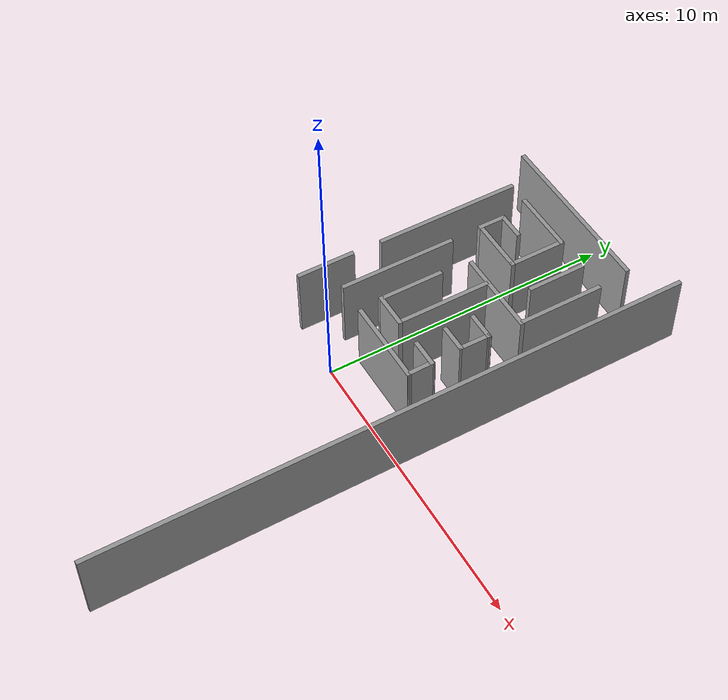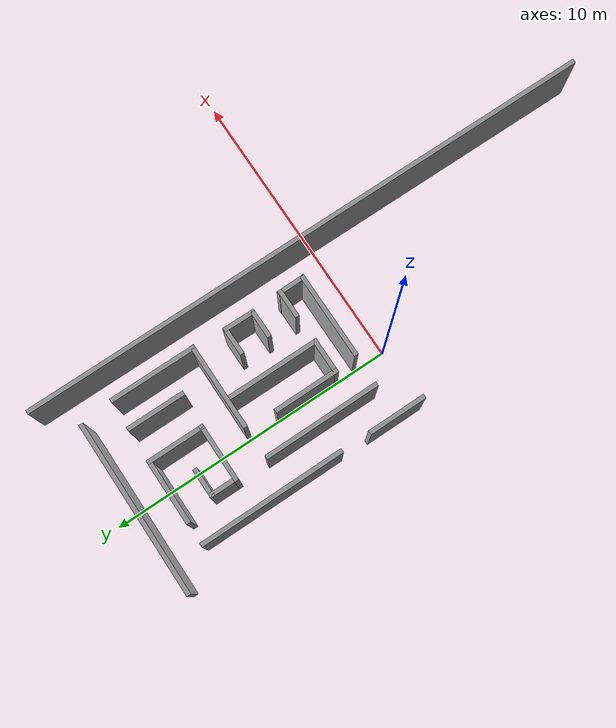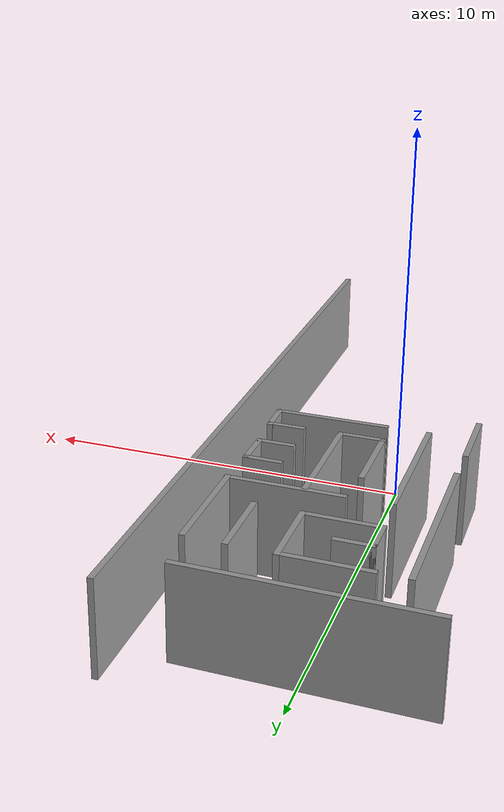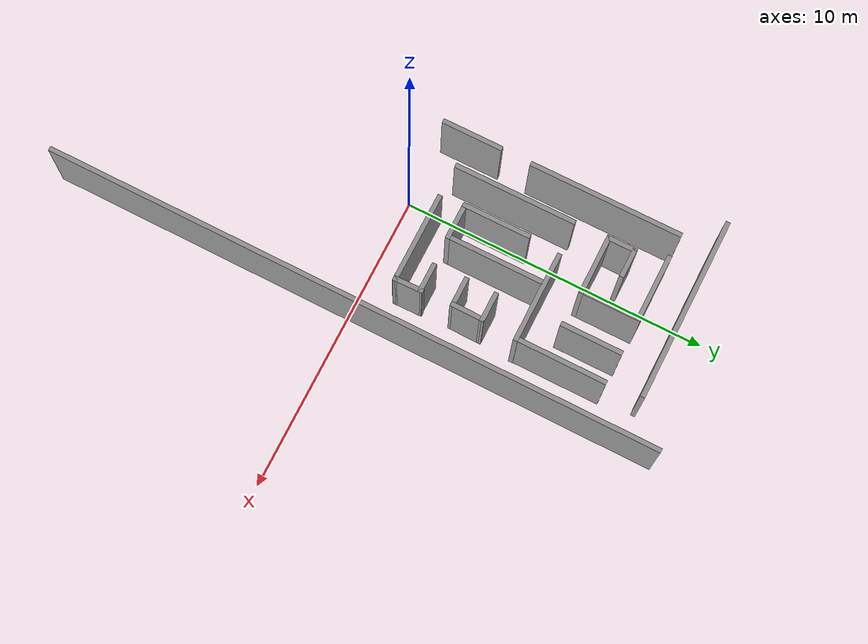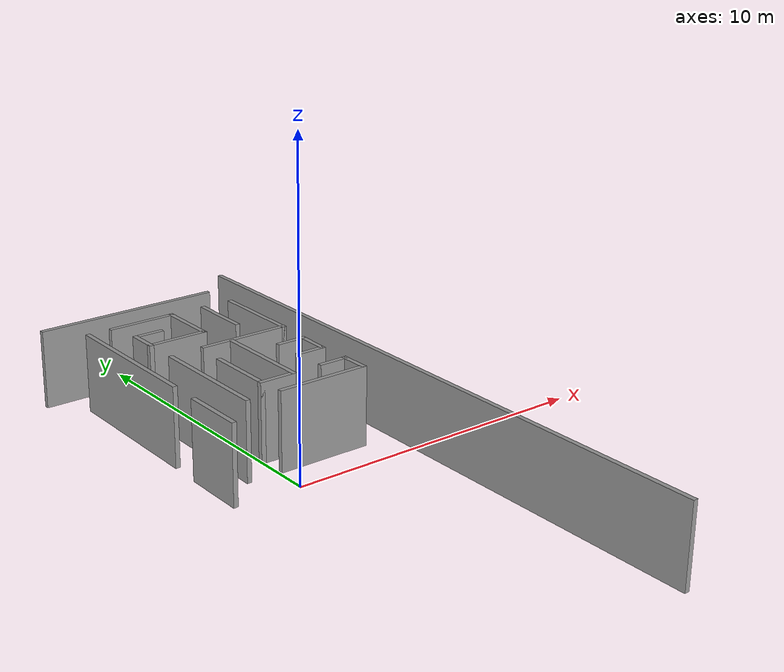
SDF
<sdf version="1.5">
 <model name="Maze2">
  <pose>-2.952 0.082564 0 0 -0 0</pose>
  <link name="Wall_104">
   <collision name="Wall_104_Collision">
    <geometry><box><size>5 0.15 2.5</size></box></geometry>
    <pose>0 0 1.25 0 -0 0</pose>
   </collision>
   <visual name="Wall_104_Visual">
    <pose>0 0 1.25 0 -0 0</pose>
    <geometry><box><size>5 0.15 2.5</size></box></geometry>
    <material>
     <script><uri>file://media/materials/scripts/gazebo.material</uri><name>Gazebo/Grey</name></script>
     <ambient>1 1 1 1</ambient>
    </material>
    <meta><layer>0</layer></meta>
   </visual>
   <pose>0.885547 5.45052 0 0 -0 1.5708</pose>
  </link>
  <link name="Wall_106">
   <collision name="Wall_106_Collision">
    <geometry><box><size>6 0.15 2.5</size></box></geometry>
    <pose>0 0 1.25 0 -0 0</pose>
   </collision>
   <visual name="Wall_106_Visual">
    <pose>0 0 1.25 0 -0 0</pose>
    <geometry><box><size>6 0.15 2.5</size></box></geometry>
    <material>
     <script><uri>file://media/materials/scripts/gazebo.material</uri><name>Gazebo/Grey</name></script>
     <ambient>1 1 1 1</ambient>
    </material>
    <meta><layer>0</layer></meta>
   </visual>
   <pose>2.87435 9.00269 0 0 -0 0</pose>
  </link>
  <link name="Wall_108">
   <collision name="Wall_108_Collision">
    <geometry><box><size>2.25 0.15 2.5</size></box></geometry>
    <pose>0 0 1.25 0 -0 0</pose>
   </collision>
   <visual name="Wall_108_Visual">
    <pose>0 0 1.25 0 -0 0</pose>
    <geometry><box><size>2.25 0.15 2.5</size></box></geometry>
    <material>
     <script><uri>file://media/materials/scripts/gazebo.material</uri><name>Gazebo/Grey</name></script>
     <ambient>1 1 1 1</ambient>
    </material>
    <meta><layer>0</layer></meta>
   </visual>
   <pose>2.74179 7.89809 0 0 -0 0</pose>
  </link>
  <link name="Wall_109">
   <collision name="Wall_109_Collision">
    <geometry><box><size>2 0.15 2.5</size></box></geometry>
    <pose>0 0 1.25 0 -0 0</pose>
   </collision>
   <visual name="Wall_109_Visual">
    <pose>0 0 1.25 0 -0 0</pose>
    <geometry><box><size>2 0.15 2.5</size></box></geometry>
    <material>
     <script><uri>file://media/materials/scripts/gazebo.material</uri><name>Gazebo/Grey</name></script>
     <ambient>1 1 1 1</ambient>
    </material>
    <meta><layer>0</layer></meta>
   </visual>
   <pose>3.79179 6.97309 0 0 -0 -1.5708</pose>
  </link>
  <link name="Wall_110">
   <collision name="Wall_110_Collision">
    <geometry><box><size>2 0.15 2.5</size></box></geometry>
    <pose>0 0 1.25 0 -0 0</pose>
   </collision>
   <visual name="Wall_110_Visual">
    <pose>0 0 1.25 0 -0 0</pose>
    <geometry><box><size>2 0.15 2.5</size></box></geometry>
    <material>
     <script><uri>file://media/materials/scripts/gazebo.material</uri><name>Gazebo/Grey</name></script>
     <ambient>1 1 1 1</ambient>
    </material>
    <meta><layer>0</layer></meta>
   </visual>
   <pose>2.86679 6.04809 0 0 -0 3.14159</pose>
  </link>
  <link name="Wall_111">
   <collision name="Wall_111_Collision">
    <geometry><box><size>1 0.15 2.5</size></box></geometry>
    <pose>0 0 1.25 0 -0 0</pose>
   </collision>
   <visual name="Wall_111_Visual">
    <pose>0 0 1.25 0 -0 0</pose>
    <geometry><box><size>1 0.15 2.5</size></box></geometry>
    <material>
     <script><uri>file://media/materials/scripts/gazebo.material</uri><name>Gazebo/Grey</name></script>
     <ambient>1 1 1 1</ambient>
    </material>
    <meta><layer>0</layer></meta>
   </visual>
   <pose>1.94179 6.47309 0 0 -0 1.5708</pose>
  </link>
  <link name="Wall_112">
   <collision name="Wall_112_Collision">
    <geometry><box><size>1 0.15 2.5</size></box></geometry>
    <pose>0 0 1.25 0 -0 0</pose>
   </collision>
   <visual name="Wall_112_Visual">
    <pose>0 0 1.25 0 -0 0</pose>
    <geometry><box><size>1 0.15 2.5</size></box></geometry>
    <material>
     <script><uri>file://media/materials/scripts/gazebo.material</uri><name>Gazebo/Grey</name></script>
     <ambient>1 1 1 1</ambient>
    </material>
    <meta><layer>0</layer></meta>
   </visual>
   <pose>2.36679 6.89809 0 0 -0 0</pose>
  </link>
  <link name="Wall_114">
   <collision name="Wall_114_Collision">
    <geometry><box><size>4 0.15 2.5</size></box></geometry>
    <pose>0 0 1.25 0 -0 0</pose>
   </collision>
   <visual name="Wall_114_Visual">
    <pose>0 0 1.25 0 -0 0</pose>
    <geometry><box><size>4 0.15 2.5</size></box></geometry>
    <material>
     <script><uri>file://media/materials/scripts/gazebo.material</uri><name>Gazebo/Grey</name></script>
     <ambient>1 1 1 1</ambient>
    </material>
    <meta><layer>0</layer></meta>
   </visual>
   <pose>1.96588 2.95915 0 0 -0 -1.5708</pose>
  </link>
  <link name="Wall_116">
   <collision name="Wall_116_Collision">
    <geometry><box><size>3 0.15 2.5</size></box></geometry>
    <pose>0 0 1.25 0 -0 0</pose>
   </collision>
   <visual name="Wall_116_Visual">
    <pose>0 0 1.25 0 -0 0</pose>
    <geometry><box><size>3 0.15 2.5</size></box></geometry>
    <material>
     <script><uri>file://media/materials/scripts/gazebo.material</uri><name>Gazebo/Grey</name></script>
     <ambient>1 1 1 1</ambient>
    </material>
    <meta><layer>0</layer></meta>
   </visual>
   <pose>4.55311 4.97074 0 0 -0 0</pose>
  </link>
  <link name="Wall_118">
   <collision name="Wall_118_Collision">
    <geometry><box><size>2 0.15 2.5</size></box></geometry>
    <pose>0 0 1.25 0 -0 0</pose>
   </collision>
   <visual name="Wall_118_Visual">
    <pose>0 0 1.25 0 -0 0</pose>
    <geometry><box><size>2 0.15 2.5</size></box></geometry>
    <material>
     <script><uri>file://media/materials/scripts/gazebo.material</uri><name>Gazebo/Grey</name></script>
     <ambient>1 1 1 1</ambient>
    </material>
    <meta><layer>0</layer></meta>
   </visual>
   <pose>4.96128 6.9316 0 0 -0 1.5708</pose>
  </link>
  <link name="Wall_120">
   <collision name="Wall_120_Collision">
    <geometry><box><size>3 0.15 2.5</size></box></geometry>
    <pose>0 0 1.25 0 -0 0</pose>
   </collision>
   <visual name="Wall_120_Visual">
    <pose>0 0 1.25 0 -0 0</pose>
    <geometry><box><size>3 0.15 2.5</size></box></geometry>
    <material>
     <script><uri>file://media/materials/scripts/gazebo.material</uri><name>Gazebo/Grey</name></script>
     <ambient>1 1 1 1</ambient>
    </material>
    <meta><layer>0</layer></meta>
   </visual>
   <pose>5.96654 6.39574 0 0 -0 1.5708</pose>
  </link>
  <link name="Wall_122">
   <collision name="Wall_122_Collision">
    <geometry><box><size>3.25 0.15 2.5</size></box></geometry>
    <pose>0 0 1.25 0 -0 0</pose>
   </collision>
   <visual name="Wall_122_Visual">
    <pose>0 0 1.25 0 -0 0</pose>
    <geometry><box><size>3.25 0.15 2.5</size></box></geometry>
    <material>
     <script><uri>file://media/materials/scripts/gazebo.material</uri><name>Gazebo/Grey</name></script>
     <ambient>1 1 1 1</ambient>
    </material>
    <meta><layer>0</layer></meta>
   </visual>
   <pose>4.07457 3.33741 0 0 -0 -1.5708</pose>
  </link>
  <link name="Wall_123">
   <collision name="Wall_123_Collision">
    <geometry><box><size>1.25 0.15 2.5</size></box></geometry>
    <pose>0 0 1.25 0 -0 0</pose>
   </collision>
   <visual name="Wall_123_Visual">
    <pose>0 0 1.25 0 -0 0</pose>
    <geometry><box><size>1.25 0.15 2.5</size></box></geometry>
    <material>
     <script><uri>file://media/materials/scripts/gazebo.material</uri><name>Gazebo/Grey</name></script>
     <ambient>1 1 1 1</ambient>
    </material>
    <meta><layer>0</layer></meta>
   </visual>
   <pose>3.52457 1.78741 0 0 -0 3.14159</pose>
  </link>
  <link name="Wall_124">
   <collision name="Wall_124_Collision">
    <geometry><box><size>2.25 0.15 2.5</size></box></geometry>
    <pose>0 0 1.25 0 -0 0</pose>
   </collision>
   <visual name="Wall_124_Visual">
    <pose>0 0 1.25 0 -0 0</pose>
    <geometry><box><size>2.25 0.15 2.5</size></box></geometry>
    <material>
     <script><uri>file://media/materials/scripts/gazebo.material</uri><name>Gazebo/Grey</name></script>
     <ambient>1 1 1 1</ambient>
    </material>
    <meta><layer>0</layer></meta>
   </visual>
   <pose>2.97457 2.83741 0 0 -0 1.5708</pose>
  </link>
  <link name="Wall_126">
   <collision name="Wall_126_Collision">
    <geometry><box><size>1 0.15 2.5</size></box></geometry>
    <pose>0 0 1.25 0 -0 0</pose>
   </collision>
   <visual name="Wall_126_Visual">
    <pose>0 0 1.25 0 -0 0</pose>
    <geometry><box><size>1 0.15 2.5</size></box></geometry>
    <material>
     <script><uri>file://media/materials/scripts/gazebo.material</uri><name>Gazebo/Grey</name></script>
     <ambient>1 1 1 1</ambient>
    </material>
    <meta><layer>0</layer></meta>
   </visual>
   <pose>5.47761 3.83472 0 0 -0 0</pose>
  </link>
  <link name="Wall_127">
   <collision name="Wall_127_Collision">
    <geometry><box><size>1.11415 0.15 2.5</size></box></geometry>
    <pose>0 0 1.25 0 -0 0</pose>
   </collision>
   <visual name="Wall_127_Visual">
    <pose>0 0 1.25 0 -0 0</pose>
    <geometry><box><size>1.11415 0.15 2.5</size></box></geometry>
    <material>
     <script><uri>file://media/materials/scripts/gazebo.material</uri><name>Gazebo/Grey</name></script>
     <ambient>1 1 1 1</ambient>
    </material>
    <meta><layer>0</layer></meta>
   </visual>
   <pose>5.89623 3.34508 0 0 -0 -1.58403</pose>
  </link>
  <link name="Wall_128">
   <collision name="Wall_128_Collision">
    <geometry><box><size>1 0.15 2.5</size></box></geometry>
    <pose>0 0 1.25 0 -0 0</pose>
   </collision>
   <visual name="Wall_128_Visual">
    <pose>0 0 1.25 0 -0 0</pose>
    <geometry><box><size>1 0.15 2.5</size></box></geometry>
    <material>
     <script><uri>file://media/materials/scripts/gazebo.material</uri><name>Gazebo/Grey</name></script>
     <ambient>1 1 1 1</ambient>
    </material>
    <meta><layer>0</layer></meta>
   </visual>
   <pose>5.46485 2.85545 0 0 -0 3.14159</pose>
  </link>
  <link name="Wall_130">
   <collision name="Wall_130_Collision">
    <geometry><box><size>3 0.15 2.5</size></box></geometry>
    <pose>0 0 1.25 0 -0 0</pose>
   </collision>
   <visual name="Wall_130_Visual">
    <pose>0 0 1.25 0 -0 0</pose>
    <geometry><box><size>3 0.15 2.5</size></box></geometry>
    <material>
     <script><uri>file://media/materials/scripts/gazebo.material</uri><name>Gazebo/Grey</name></script>
     <ambient>1 1 1 1</ambient>
    </material>
    <meta><layer>0</layer></meta>
   </visual>
   <pose>4.52953 0.989447 0 0 -0 0</pose>
  </link>
  <link name="Wall_131">
   <collision name="Wall_131_Collision">
    <geometry><box><size>0.969553 0.15 2.5</size></box></geometry>
    <pose>0 0 1.25 0 -0 0</pose>
   </collision>
   <visual name="Wall_131_Visual">
    <pose>0 0 1.25 0 -0 0</pose>
    <geometry><box><size>0.969553 0.15 2.5</size></box></geometry>
    <material>
     <script><uri>file://media/materials/scripts/gazebo.material</uri><name>Gazebo/Grey</name></script>
     <ambient>1 1 1 1</ambient>
    </material>
    <meta><layer>0</layer></meta>
   </visual>
   <pose>5.94688 1.41445 0 0 -0 1.58946</pose>
  </link>
  <link name="Wall_132">
   <collision name="Wall_132_Collision">
    <geometry><box><size>1 0.15 2.5</size></box></geometry>
    <pose>0 0 1.25 0 -0 0</pose>
   </collision>
   <visual name="Wall_132_Visual">
    <pose>0 0 1.25 0 -0 0</pose>
    <geometry><box><size>1 0.15 2.5</size></box></geometry>
    <material>
     <script><uri>file://media/materials/scripts/gazebo.material</uri><name>Gazebo/Grey</name></script>
     <ambient>1 1 1 1</ambient>
    </material>
    <meta><layer>0</layer></meta>
   </visual>
   <pose>5.51424 1.80886 0 0 -0 3.14159</pose>
  </link>
  <link name="Wall_4">
   <collision name="Wall_4_Collision">
    <geometry><box><size>20.3154 0.15 2.5</size></box></geometry>
    <pose>0 0 1.25 0 -0 0</pose>
   </collision>
   <visual name="Wall_4_Visual">
    <pose>0 0 1.25 0 -0 0</pose>
    <geometry><box><size>20.3154 0.15 2.5</size></box></geometry>
    <material>
     <script><uri>file://media/materials/scripts/gazebo.material</uri><name>Gazebo/Grey</name></script>
     <ambient>1 1 1 1</ambient>
    </material>
    <meta><layer>0</layer></meta>
   </visual>
   <pose>7.06829 0.000144 0 0 -0 1.5708</pose>
  </link>
  <link name="Wall_92">
   <collision name="Wall_92_Collision">
    <geometry><box><size>2 0.15 2.5</size></box></geometry>
    <pose>0 0 1.25 0 -0 0</pose>
   </collision>
   <visual name="Wall_92_Visual">
    <pose>0 0 1.25 0 -0 0</pose>
    <geometry><box><size>2 0.15 2.5</size></box></geometry>
    <material>
     <script><uri>file://media/materials/scripts/gazebo.material</uri><name>Gazebo/Grey</name></script>
     <ambient>1 1 1 1</ambient>
    </material>
    <meta><layer>0</layer></meta>
   </visual>
   <pose>0.863474 0.9831 0 0 -0 -1.5708</pose>
  </link>
  <static>1</static>
 </model>
 <model name="Maze2">
  <pose>-2.952 0.082564 0 0 -0 0</pose>
  <scale>1 1 1</scale>
  <link name="Wall_0">
   <pose>-1.89538 -2.33625 0 0 -0 1.5708</pose>
   <velocity>0 0 0 0 -0 0</velocity>
   <acceleration>0 0 0 0 -0 0</acceleration>
   <wrench>0 0 0 0 -0 0</wrench>
  </link>
  <link name="Wall_1">
   <pose>-5.9401 -0.908952 0 0 -0 3.13346</pose>
   <velocity>0 0 0 0 -0 0</velocity>
   <acceleration>0 0 0 0 -0 0</acceleration>
   <wrench>0 0 0 0 -0 0</wrench>
  </link>
  <link name="Wall_10">
   <pose>-8.94408 -3.00785 0 0 0 -1.57273</pose>
   <velocity>0 0 0 0 -0 0</velocity>
   <acceleration>0 0 0 0 -0 0</acceleration>
   <wrench>0 0 0 0 -0 0</wrench>
  </link>
  <link name="Wall_100">
   <pose>0.49954 -8.95639 0 0 -0 3.14159</pose>
   <velocity>0 0 0 0 -0 0</velocity>
   <acceleration>0 0 0 0 -0 0</acceleration>
   <wrench>0 0 0 0 -0 0</wrench>
  </link>
  <link name="Wall_102">
   <pose>-2.89846 -8.52522 0 0 0 -1.5708</pose>
   <velocity>0 0 0 0 -0 0</velocity>
   <acceleration>0 0 0 0 -0 0</acceleration>
   <wrench>0 0 0 0 -0 0</wrench>
  </link>
  <link name="Wall_104">
   <pose>-2.06645 5.53308 0 0 -0 1.5708</pose>
   <velocity>0 0 0 0 -0 0</velocity>
   <acceleration>0 0 0 0 -0 0</acceleration>
   <wrench>0 0 0 0 -0 0</wrench>
  </link>
  <link name="Wall_106">
   <pose>-0.07765 9.08525 0 0 -0 0</pose>
   <velocity>0 0 0 0 -0 0</velocity>
   <acceleration>0 0 0 0 -0 0</acceleration>
   <wrench>0 0 0 0 -0 0</wrench>
  </link>
  <link name="Wall_108">
   <pose>-0.21021 7.98065 0 0 -0 0</pose>
   <velocity>0 0 0 0 -0 0</velocity>
   <acceleration>0 0 0 0 -0 0</acceleration>
   <wrench>0 0 0 0 -0 0</wrench>
  </link>
  <link name="Wall_109">
   <pose>0.83979 7.05565 0 0 0 -1.5708</pose>
   <velocity>0 0 0 0 -0 0</velocity>
   <acceleration>0 0 0 0 -0 0</acceleration>
   <wrench>0 0 0 0 -0 0</wrench>
  </link>
  <link name="Wall_110">
   <pose>-0.08521 6.13065 0 0 -0 3.14159</pose>
   <velocity>0 0 0 0 -0 0</velocity>
   <acceleration>0 0 0 0 -0 0</acceleration>
   <wrench>0 0 0 0 -0 0</wrench>
  </link>
  <link name="Wall_111">
   <pose>-1.01021 6.55565 0 0 -0 1.5708</pose>
   <velocity>0 0 0 0 -0 0</velocity>
   <acceleration>0 0 0 0 -0 0</acceleration>
   <wrench>0 0 0 0 -0 0</wrench>
  </link>
  <link name="Wall_112">
   <pose>-0.58521 6.98065 0 0 -0 0</pose>
   <velocity>0 0 0 0 -0 0</velocity>
   <acceleration>0 0 0 0 -0 0</acceleration>
   <wrench>0 0 0 0 -0 0</wrench>
  </link>
  <link name="Wall_114">
   <pose>-0.98612 3.04171 0 0 0 -1.5708</pose>
   <velocity>0 0 0 0 -0 0</velocity>
   <acceleration>0 0 0 0 -0 0</acceleration>
   <wrench>0 0 0 0 -0 0</wrench>
  </link>
  <link name="Wall_116">
   <pose>1.60111 5.0533 0 0 -0 0</pose>
   <velocity>0 0 0 0 -0 0</velocity>
   <acceleration>0 0 0 0 -0 0</acceleration>
   <wrench>0 0 0 0 -0 0</wrench>
  </link>
  <link name="Wall_118">
   <pose>2.00928 7.01416 0 0 -0 1.5708</pose>
   <velocity>0 0 0 0 -0 0</velocity>
   <acceleration>0 0 0 0 -0 0</acceleration>
   <wrench>0 0 0 0 -0 0</wrench>
  </link>
  <link name="Wall_12">
   <pose>-5.41712 -2.86403 0 0 -0 0.006165</pose>
   <velocity>0 0 0 0 -0 0</velocity>
   <acceleration>0 0 0 0 -0 0</acceleration>
   <wrench>0 0 0 0 -0 0</wrench>
  </link>
  <link name="Wall_120">
   <pose>3.01454 6.4783 0 0 -0 1.5708</pose>
   <velocity>0 0 0 0 -0 0</velocity>
   <acceleration>0 0 0 0 -0 0</acceleration>
   <wrench>0 0 0 0 -0 0</wrench>
  </link>
  <link name="Wall_122">
   <pose>1.12257 3.41997 0 0 0 -1.5708</pose>
   <velocity>0 0 0 0 -0 0</velocity>
   <acceleration>0 0 0 0 -0 0</acceleration>
   <wrench>0 0 0 0 -0 0</wrench>
  </link>
  <link name="Wall_123">
   <pose>0.57257 1.86997 0 0 -0 3.14159</pose>
   <velocity>0 0 0 0 -0 0</velocity>
   <acceleration>0 0 0 0 -0 0</acceleration>
   <wrench>0 0 0 0 -0 0</wrench>
  </link>
  <link name="Wall_124">
   <pose>0.02257 2.91997 0 0 -0 1.5708</pose>
   <velocity>0 0 0 0 -0 0</velocity>
   <acceleration>0 0 0 0 -0 0</acceleration>
   <wrench>0 0 0 0 -0 0</wrench>
  </link>
  <link name="Wall_126">
   <pose>2.52561 3.91728 0 0 -0 0</pose>
   <velocity>0 0 0 0 -0 0</velocity>
   <acceleration>0 0 0 0 -0 0</acceleration>
   <wrench>0 0 0 0 -0 0</wrench>
  </link>
  <link name="Wall_127">
   <pose>2.94423 3.42764 0 0 0 -1.58403</pose>
   <velocity>0 0 0 0 -0 0</velocity>
   <acceleration>0 0 0 0 -0 0</acceleration>
   <wrench>0 0 0 0 -0 0</wrench>
  </link>
  <link name="Wall_128">
   <pose>2.51285 2.93801 0 0 -0 3.14159</pose>
   <velocity>0 0 0 0 -0 0</velocity>
   <acceleration>0 0 0 0 -0 0</acceleration>
   <wrench>0 0 0 0 -0 0</wrench>
  </link>
  <link name="Wall_13">
   <pose>-2.96681 -3.89874 0 0 0 -1.5708</pose>
   <velocity>0 0 0 0 -0 0</velocity>
   <acceleration>0 0 0 0 -0 0</acceleration>
   <wrench>0 0 0 0 -0 0</wrench>
  </link>
  <link name="Wall_130">
   <pose>1.57753 1.07201 0 0 -0 0</pose>
   <velocity>0 0 0 0 -0 0</velocity>
   <acceleration>0 0 0 0 -0 0</acceleration>
   <wrench>0 0 0 0 -0 0</wrench>
  </link>
  <link name="Wall_131">
   <pose>2.99488 1.49701 0 0 -0 1.58946</pose>
   <velocity>0 0 0 0 -0 0</velocity>
   <acceleration>0 0 0 0 -0 0</acceleration>
   <wrench>0 0 0 0 -0 0</wrench>
  </link>
  <link name="Wall_132">
   <pose>2.56224 1.89142 0 0 -0 3.14159</pose>
   <velocity>0 0 0 0 -0 0</velocity>
   <acceleration>0 0 0 0 -0 0</acceleration>
   <wrench>0 0 0 0 -0 0</wrench>
  </link>
  <link name="Wall_134">
   <pose>2.9859 -2.07524 0 0 0 -1.5708</pose>
   <velocity>0 0 0 0 -0 0</velocity>
   <acceleration>0 0 0 0 -0 0</acceleration>
   <wrench>0 0 0 0 -0 0</wrench>
  </link>
  <link name="Wall_136">
   <pose>2.50173 -8.93057 0 0 -0 0</pose>
   <velocity>0 0 0 0 -0 0</velocity>
   <acceleration>0 0 0 0 -0 0</acceleration>
   <wrench>0 0 0 0 -0 0</wrench>
  </link>
  <link name="Wall_137">
   <pose>2.92673 -8.50557 0 0 -0 1.5708</pose>
   <velocity>0 0 0 0 -0 0</velocity>
   <acceleration>0 0 0 0 -0 0</acceleration>
   <wrench>0 0 0 0 -0 0</wrench>
  </link>
  <link name="Wall_138">
   <pose>2.92673 -7.53057 0 0 -0 1.5708</pose>
   <velocity>0 0 0 0 -0 0</velocity>
   <acceleration>0 0 0 0 -0 0</acceleration>
   <wrench>0 0 0 0 -0 0</wrench>
  </link>
  <link name="Wall_14">
   <pose>-2.06712 -4.96403 0 0 0 -0.017597</pose>
   <velocity>0 0 0 0 -0 0</velocity>
   <acceleration>0 0 0 0 -0 0</acceleration>
   <wrench>0 0 0 0 -0 0</wrench>
  </link>
  <link name="Wall_140">
   <pose>-0.03938 -6.05815 0 0 -0 1.5708</pose>
   <velocity>0 0 0 0 -0 0</velocity>
   <acceleration>0 0 0 0 -0 0</acceleration>
   <wrench>0 0 0 0 -0 0</wrench>
  </link>
  <link name="Wall_141">
   <pose>1.01061 -5.13315 0 0 -0 0</pose>
   <velocity>0 0 0 0 -0 0</velocity>
   <acceleration>0 0 0 0 -0 0</acceleration>
   <wrench>0 0 0 0 -0 0</wrench>
  </link>
  <link name="Wall_142">
   <pose>2.06062 -5.55815 0 0 0 -1.5708</pose>
   <velocity>0 0 0 0 -0 0</velocity>
   <acceleration>0 0 0 0 -0 0</acceleration>
   <wrench>0 0 0 0 -0 0</wrench>
  </link>
  <link name="Wall_143">
   <pose>1.51062 -5.98315 0 0 -0 3.14159</pose>
   <velocity>0 0 0 0 -0 0</velocity>
   <acceleration>0 0 0 0 -0 0</acceleration>
   <wrench>0 0 0 0 -0 0</wrench>
  </link>
  <link name="Wall_145">
   <pose>0.48058 -3.89165 0 0 -0 0</pose>
   <velocity>0 0 0 0 -0 0</velocity>
   <acceleration>0 0 0 0 -0 0</acceleration>
   <wrench>0 0 0 0 -0 0</wrench>
  </link>
  <link name="Wall_146">
   <pose>1.89029 -3.45909 0 0 -0 1.60553</pose>
   <velocity>0 0 0 0 -0 0</velocity>
   <acceleration>0 0 0 0 -0 0</acceleration>
   <wrench>0 0 0 0 -0 0</wrench>
  </link>
  <link name="Wall_147">
   <pose>0.46529 -3.01892 0 0 -0 3.14159</pose>
   <velocity>0 0 0 0 -0 0</velocity>
   <acceleration>0 0 0 0 -0 0</acceleration>
   <wrench>0 0 0 0 -0 0</wrench>
  </link>
  <link name="Wall_149">
   <pose>-0.95971 -2.46892 0 0 -0 1.5708</pose>
   <velocity>0 0 0 0 -0 0</velocity>
   <acceleration>0 0 0 0 -0 0</acceleration>
   <wrench>0 0 0 0 -0 0</wrench>
  </link>
  <link name="Wall_15">
   <pose>-1.14973 -4.99227 0 0 0 -0.261799</pose>
   <velocity>0 0 0 0 -0 0</velocity>
   <acceleration>0 0 0 0 -0 0</acceleration>
   <wrench>0 0 0 0 -0 0</wrench>
  </link>
  <link name="Wall_150">
   <pose>-0.40971 -1.91892 0 0 -0 0</pose>
   <velocity>0 0 0 0 -0 0</velocity>
   <acceleration>0 0 0 0 -0 0</acceleration>
   <wrench>0 0 0 0 -0 0</wrench>
  </link>
  <link name="Wall_151">
   <pose>0.14029 -1.49392 0 0 -0 1.5708</pose>
   <velocity>0 0 0 0 -0 0</velocity>
   <acceleration>0 0 0 0 -0 0</acceleration>
   <wrench>0 0 0 0 -0 0</wrench>
  </link>
  <link name="Wall_152">
   <pose>-0.40971 -1.06892 0 0 -0 3.14159</pose>
   <velocity>0 0 0 0 -0 0</velocity>
   <acceleration>0 0 0 0 -0 0</acceleration>
   <wrench>0 0 0 0 -0 0</wrench>
  </link>
  <link name="Wall_154">
   <pose>1.08243 -1.49072 0 0 0 -1.5708</pose>
   <velocity>0 0 0 0 -0 0</velocity>
   <acceleration>0 0 0 0 -0 0</acceleration>
   <wrench>0 0 0 0 -0 0</wrench>
  </link>
  <link name="Wall_155">
   <pose>1.50743 -1.91572 0 0 -0 0</pose>
   <velocity>0 0 0 0 -0 0</velocity>
   <acceleration>0 0 0 0 -0 0</acceleration>
   <wrench>0 0 0 0 -0 0</wrench>
  </link>
  <link name="Wall_156">
   <pose>1.93243 -1.49072 0 0 -0 1.5708</pose>
   <velocity>0 0 0 0 -0 0</velocity>
   <acceleration>0 0 0 0 -0 0</acceleration>
   <wrench>0 0 0 0 -0 0</wrench>
  </link>
  <link name="Wall_16">
   <pose>-1.10143 -5.43021 0 0 0 -1.5708</pose>
   <velocity>0 0 0 0 -0 0</velocity>
   <acceleration>0 0 0 0 -0 0</acceleration>
   <wrench>0 0 0 0 -0 0</wrench>
  </link>
  <link name="Wall_17">
   <pose>-3.52643 -5.85521 0 0 -0 3.14159</pose>
   <velocity>0 0 0 0 -0 0</velocity>
   <acceleration>0 0 0 0 -0 0</acceleration>
   <wrench>0 0 0 0 -0 0</wrench>
  </link>
  <link name="Wall_19">
   <pose>-5.95143 -7.90521 0 0 0 -1.5708</pose>
   <velocity>0 0 0 0 -0 0</velocity>
   <acceleration>0 0 0 0 -0 0</acceleration>
   <wrench>0 0 0 0 -0 0</wrench>
  </link>
  <link name="Wall_2">
   <pose>-10.0024 -5.45563 0 0 0 -1.57467</pose>
   <velocity>0 0 0 0 -0 0</velocity>
   <acceleration>0 0 0 0 -0 0</acceleration>
   <wrench>0 0 0 0 -0 0</wrench>
  </link>
  <link name="Wall_21">
   <pose>-8.9588 -4.90546 0 0 -0 0</pose>
   <velocity>0 0 0 0 -0 0</velocity>
   <acceleration>0 0 0 0 -0 0</acceleration>
   <wrench>0 0 0 0 -0 0</wrench>
  </link>
  <link name="Wall_22">
   <pose>-8.0338 -4.48046 0 0 -0 1.5708</pose>
   <velocity>0 0 0 0 -0 0</velocity>
   <acceleration>0 0 0 0 -0 0</acceleration>
   <wrench>0 0 0 0 -0 0</wrench>
  </link>
  <link name="Wall_23">
   <pose>-7.4838 -4.05546 0 0 -0 0</pose>
   <velocity>0 0 0 0 -0 0</velocity>
   <acceleration>0 0 0 0 -0 0</acceleration>
   <wrench>0 0 0 0 -0 0</wrench>
  </link>
  <link name="Wall_24">
   <pose>-6.9338 -4.98046 0 0 0 -1.5708</pose>
   <velocity>0 0 0 0 -0 0</velocity>
   <acceleration>0 0 0 0 -0 0</acceleration>
   <wrench>0 0 0 0 -0 0</wrench>
  </link>
  <link name="Wall_25">
   <pose>-7.9838 -5.90546 0 0 -0 3.14159</pose>
   <velocity>0 0 0 0 -0 0</velocity>
   <acceleration>0 0 0 0 -0 0</acceleration>
   <wrench>0 0 0 0 -0 0</wrench>
  </link>
  <link name="Wall_26">
   <pose>-9.0338 -7.33046 0 0 0 -1.5708</pose>
   <velocity>0 0 0 0 -0 0</velocity>
   <acceleration>0 0 0 0 -0 0</acceleration>
   <wrench>0 0 0 0 -0 0</wrench>
  </link>
  <link name="Wall_27">
   <pose>-7.9838 -8.75546 0 0 -0 0</pose>
   <velocity>0 0 0 0 -0 0</velocity>
   <acceleration>0 0 0 0 -0 0</acceleration>
   <wrench>0 0 0 0 -0 0</wrench>
  </link>
  <link name="Wall_28">
   <pose>-6.9338 -7.95546 0 0 -0 1.5708</pose>
   <velocity>0 0 0 0 -0 0</velocity>
   <acceleration>0 0 0 0 -0 0</acceleration>
   <wrench>0 0 0 0 -0 0</wrench>
  </link>
  <link name="Wall_29">
   <pose>-7.6088 -7.15546 0 0 -0 3.14159</pose>
   <velocity>0 0 0 0 -0 0</velocity>
   <acceleration>0 0 0 0 -0 0</acceleration>
   <wrench>0 0 0 0 -0 0</wrench>
  </link>
  <link name="Wall_3">
   <pose>-2.97525 -10 0 0 -0 0</pose>
   <velocity>0 0 0 0 -0 0</velocity>
   <acceleration>0 0 0 0 -0 0</acceleration>
   <wrench>0 0 0 0 -0 0</wrench>
  </link>
  <link name="Wall_31">
   <pose>-5.96825 -3.91857 0 0 0 -1.5708</pose>
   <velocity>0 0 0 0 -0 0</velocity>
   <acceleration>0 0 0 0 -0 0</acceleration>
   <wrench>0 0 0 0 -0 0</wrench>
  </link>
  <link name="Wall_33">
   <pose>-4.97943 -4.90475 0 0 0 -0.015467</pose>
   <velocity>0 0 0 0 -0 0</velocity>
   <acceleration>0 0 0 0 -0 0</acceleration>
   <wrench>0 0 0 0 -0 0</wrench>
  </link>
  <link name="Wall_34">
   <pose>-3.96002 -4.47975 0 0 -0 1.5708</pose>
   <velocity>0 0 0 0 -0 0</velocity>
   <acceleration>0 0 0 0 -0 0</acceleration>
   <wrench>0 0 0 0 -0 0</wrench>
  </link>
  <link name="Wall_35">
   <pose>-4.47943 -4.00887 0 0 -0 3.07909</pose>
   <velocity>0 0 0 0 -0 0</velocity>
   <acceleration>0 0 0 0 -0 0</acceleration>
   <wrench>0 0 0 0 -0 0</wrench>
  </link>
  <link name="Wall_37">
   <pose>-4.954 -8.49004 0 0 0 -1.5708</pose>
   <velocity>0 0 0 0 -0 0</velocity>
   <acceleration>0 0 0 0 -0 0</acceleration>
   <wrench>0 0 0 0 -0 0</wrench>
  </link>
  <link name="Wall_38">
   <pose>-4.47623 -9.91504 0 0 0 -0.073499</pose>
   <velocity>0 0 0 0 -0 0</velocity>
   <acceleration>0 0 0 0 -0 0</acceleration>
   <wrench>0 0 0 0 -0 0</wrench>
  </link>
  <link name="Wall_39">
   <pose>-3.99846 -9.02522 0 0 -0 1.5708</pose>
   <velocity>0 0 0 0 -0 0</velocity>
   <acceleration>0 0 0 0 -0 0</acceleration>
   <wrench>0 0 0 0 -0 0</wrench>
  </link>
  <link name="Wall_4">
   <pose>4.11629 0.082708 0 0 -0 1.5708</pose>
   <velocity>0 0 0 0 -0 0</velocity>
   <acceleration>0 0 0 0 -0 0</acceleration>
   <wrench>0 0 0 0 -0 0</wrench>
  </link>
  <link name="Wall_40">
   <pose>-3.44846 -8.10022 0 0 -0 0</pose>
   <velocity>0 0 0 0 -0 0</velocity>
   <acceleration>0 0 0 0 -0 0</acceleration>
   <wrench>0 0 0 0 -0 0</wrench>
  </link>
  <link name="Wall_41">
   <pose>-2.89846 -7.67522 0 0 -0 1.5708</pose>
   <velocity>0 0 0 0 -0 0</velocity>
   <acceleration>0 0 0 0 -0 0</acceleration>
   <wrench>0 0 0 0 -0 0</wrench>
  </link>
  <link name="Wall_43">
   <pose>-3.93849 -6.39757 0 0 0 -1.5708</pose>
   <velocity>0 0 0 0 -0 0</velocity>
   <acceleration>0 0 0 0 -0 0</acceleration>
   <wrench>0 0 0 0 -0 0</wrench>
  </link>
  <link name="Wall_45">
   <pose>-2.02327 -7.40557 0 0 0 -1.5708</pose>
   <velocity>0 0 0 0 -0 0</velocity>
   <acceleration>0 0 0 0 -0 0</acceleration>
   <wrench>0 0 0 0 -0 0</wrench>
  </link>
  <link name="Wall_46">
   <pose>-2.02327 -7.78057 0 0 -0 1.5708</pose>
   <velocity>0 0 0 0 -0 0</velocity>
   <acceleration>0 0 0 0 -0 0</acceleration>
   <wrench>0 0 0 0 -0 0</wrench>
  </link>
  <link name="Wall_47">
   <pose>-2.02327 -6.73057 0 0 -0 0</pose>
   <velocity>0 0 0 0 -0 0</velocity>
   <acceleration>0 0 0 0 -0 0</acceleration>
   <wrench>0 0 0 0 -0 0</wrench>
  </link>
  <link name="Wall_48">
   <pose>-2.02327 -6.90557 0 0 0 -1.5708</pose>
   <velocity>0 0 0 0 -0 0</velocity>
   <acceleration>0 0 0 0 -0 0</acceleration>
   <wrench>0 0 0 0 -0 0</wrench>
  </link>
  <link name="Wall_49">
   <pose>0.02672 -7.08057 0 0 -0 0</pose>
   <velocity>0 0 0 0 -0 0</velocity>
   <acceleration>0 0 0 0 -0 0</acceleration>
   <wrench>0 0 0 0 -0 0</wrench>
  </link>
  <link name="Wall_5">
   <pose>-2.97525 10.1655 0 0 -0 3.14159</pose>
   <velocity>0 0 0 0 -0 0</velocity>
   <acceleration>0 0 0 0 -0 0</acceleration>
   <wrench>0 0 0 0 -0 0</wrench>
  </link>
  <link name="Wall_50">
   <pose>2.07672 -8.00557 0 0 0 -1.5708</pose>
   <velocity>0 0 0 0 -0 0</velocity>
   <acceleration>0 0 0 0 -0 0</acceleration>
   <wrench>0 0 0 0 -0 0</wrench>
  </link>
  <link name="Wall_52">
   <pose>-8.9009 4.62756 0 0 -0 1.5748</pose>
   <velocity>0 0 0 0 -0 0</velocity>
   <acceleration>0 0 0 0 -0 0</acceleration>
   <wrench>0 0 0 0 -0 0</wrench>
  </link>
  <link name="Wall_53">
   <pose>-8.45195 9.02275 0 0 -0 0.007167</pose>
   <velocity>0 0 0 0 -0 0</velocity>
   <acceleration>0 0 0 0 -0 0</acceleration>
   <wrench>0 0 0 0 -0 0</wrench>
  </link>
  <link name="Wall_54">
   <pose>-8.04033 7.46904 0 0 0 -1.56655</pose>
   <velocity>0 0 0 0 -0 0</velocity>
   <acceleration>0 0 0 0 -0 0</acceleration>
   <wrench>0 0 0 0 -0 0</wrench>
  </link>
  <link name="Wall_55">
   <pose>-6.99694 5.91243 0 0 -0 0</pose>
   <velocity>0 0 0 0 -0 0</velocity>
   <acceleration>0 0 0 0 -0 0</acceleration>
   <wrench>0 0 0 0 -0 0</wrench>
  </link>
  <link name="Wall_56">
   <pose>-5.93379 4.42157 0 0 0 -1.57085</pose>
   <velocity>0 0 0 0 -0 0</velocity>
   <acceleration>0 0 0 0 -0 0</acceleration>
   <wrench>0 0 0 0 -0 0</wrench>
  </link>
  <link name="Wall_57">
   <pose>-6.99709 2.94393 0 0 -0 3.129</pose>
   <velocity>0 0 0 0 -0 0</velocity>
   <acceleration>0 0 0 0 -0 0</acceleration>
   <wrench>0 0 0 0 -0 0</wrench>
  </link>
  <link name="Wall_58">
   <pose>-8.03352 3.9701 0 0 -0 1.57046</pose>
   <velocity>0 0 0 0 -0 0</velocity>
   <acceleration>0 0 0 0 -0 0</acceleration>
   <wrench>0 0 0 0 -0 0</wrench>
  </link>
  <link name="Wall_59">
   <pose>-7.49318 4.98304 0 0 -0 0</pose>
   <velocity>0 0 0 0 -0 0</velocity>
   <acceleration>0 0 0 0 -0 0</acceleration>
   <wrench>0 0 0 0 -0 0</wrench>
  </link>
  <link name="Wall_6">
   <pose>-10.0052 5.12466 0 0 0 -1.56782</pose>
   <velocity>0 0 0 0 -0 0</velocity>
   <acceleration>0 0 0 0 -0 0</acceleration>
   <wrench>0 0 0 0 -0 0</wrench>
  </link>
  <link name="Wall_61">
   <pose>-6.94318 4.55804 0 0 0 -1.5708</pose>
   <velocity>0 0 0 0 -0 0</velocity>
   <acceleration>0 0 0 0 -0 0</acceleration>
   <wrench>0 0 0 0 -0 0</wrench>
  </link>
  <link name="Wall_63">
   <pose>-8.05111 1.04035 0 0 -0 1.55695</pose>
   <velocity>0 0 0 0 -0 0</velocity>
   <acceleration>0 0 0 0 -0 0</acceleration>
   <wrench>0 0 0 0 -0 0</wrench>
  </link>
  <link name="Wall_64">
   <pose>-8.03954 1.43283 0 0 0 -1.5708</pose>
   <velocity>0 0 0 0 -0 0</velocity>
   <acceleration>0 0 0 0 -0 0</acceleration>
   <wrench>0 0 0 0 -0 0</wrench>
  </link>
  <link name="Wall_65">
   <pose>-7.50086 1.03407 0 0 -0 0.016233</pose>
   <velocity>0 0 0 0 -0 0</velocity>
   <acceleration>0 0 0 0 -0 0</acceleration>
   <wrench>0 0 0 0 -0 0</wrench>
  </link>
  <link name="Wall_67">
   <pose>-6.94468 1.46781 0 0 -0 1.5708</pose>
   <velocity>0 0 0 0 -0 0</velocity>
   <acceleration>0 0 0 0 -0 0</acceleration>
   <wrench>0 0 0 0 -0 0</wrench>
  </link>
  <link name="Wall_69">
   <pose>-6.04557 1.10199 0 0 0 -1.5708</pose>
   <velocity>0 0 0 0 -0 0</velocity>
   <acceleration>0 0 0 0 -0 0</acceleration>
   <wrench>0 0 0 0 -0 0</wrench>
  </link>
  <link name="Wall_7">
   <pose>-4.0654 0.145448 0 0 -0 0</pose>
   <velocity>0 0 0 0 -0 0</velocity>
   <acceleration>0 0 0 0 -0 0</acceleration>
   <wrench>0 0 0 0 -0 0</wrench>
  </link>
  <link name="Wall_70">
   <pose>-6.04557 0.291939 0 0 -0 0</pose>
   <velocity>0 0 0 0 -0 0</velocity>
   <acceleration>0 0 0 0 -0 0</acceleration>
   <wrench>0 0 0 0 -0 0</wrench>
  </link>
  <link name="Wall_73">
   <pose>-7.02391 8.56159 0 0 0 -1.5708</pose>
   <velocity>0 0 0 0 -0 0</velocity>
   <acceleration>0 0 0 0 -0 0</acceleration>
   <wrench>0 0 0 0 -0 0</wrench>
  </link>
  <link name="Wall_75">
   <pose>-6.08921 7.53262 0 0 -0 1.5708</pose>
   <velocity>0 0 0 0 -0 0</velocity>
   <acceleration>0 0 0 0 -0 0</acceleration>
   <wrench>0 0 0 0 -0 0</wrench>
  </link>
  <link name="Wall_76">
   <pose>-4.57824 8.09997 0 0 -0 0.011481</pose>
   <velocity>0 0 0 0 -0 0</velocity>
   <acceleration>0 0 0 0 -0 0</acceleration>
   <wrench>0 0 0 0 -0 0</wrench>
  </link>
  <link name="Wall_78">
   <pose>-4.97513 8.63991 0 0 -0 1.56663</pose>
   <velocity>0 0 0 0 -0 0</velocity>
   <acceleration>0 0 0 0 -0 0</acceleration>
   <wrench>0 0 0 0 -0 0</wrench>
  </link>
  <link name="Wall_79">
   <pose>-4.5484 9.05796 0 0 -0 0</pose>
   <velocity>0 0 0 0 -0 0</velocity>
   <acceleration>0 0 0 0 -0 0</acceleration>
   <wrench>0 0 0 0 -0 0</wrench>
  </link>
  <link name="Wall_81">
   <pose>-3.06728 6.02663 0 0 0 -1.5708</pose>
   <velocity>0 0 0 0 -0 0</velocity>
   <acceleration>0 0 0 0 -0 0</acceleration>
   <wrench>0 0 0 0 -0 0</wrench>
  </link>
  <link name="Wall_83">
   <pose>-4.00517 4.01732 0 0 -0 3.14159</pose>
   <velocity>0 0 0 0 -0 0</velocity>
   <acceleration>0 0 0 0 -0 0</acceleration>
   <wrench>0 0 0 0 -0 0</wrench>
  </link>
  <link name="Wall_84">
   <pose>-4.93541 5.52143 0 0 -0 1.57588</pose>
   <velocity>0 0 0 0 -0 0</velocity>
   <acceleration>0 0 0 0 -0 0</acceleration>
   <wrench>0 0 0 0 -0 0</wrench>
  </link>
  <link name="Wall_85">
   <pose>-4.41864 7.02555 0 0 -0 0</pose>
   <velocity>0 0 0 0 -0 0</velocity>
   <acceleration>0 0 0 0 -0 0</acceleration>
   <wrench>0 0 0 0 -0 0</wrench>
  </link>
  <link name="Wall_86">
   <pose>-3.92481 6.10055 0 0 0 -1.5708</pose>
   <velocity>0 0 0 0 -0 0</velocity>
   <acceleration>0 0 0 0 -0 0</acceleration>
   <wrench>0 0 0 0 -0 0</wrench>
  </link>
  <link name="Wall_88">
   <pose>-4.96707 1.66018 0 0 -0 1.5708</pose>
   <velocity>0 0 0 0 -0 0</velocity>
   <acceleration>0 0 0 0 -0 0</acceleration>
   <wrench>0 0 0 0 -0 0</wrench>
  </link>
  <link name="Wall_89">
   <pose>-3.98392 3.08518 0 0 -0 0</pose>
   <velocity>0 0 0 0 -0 0</velocity>
   <acceleration>0 0 0 0 -0 0</acceleration>
   <wrench>0 0 0 0 -0 0</wrench>
  </link>
  <link name="Wall_9">
   <pose>-6.01709 -1.94723 0 0 -0 3.14159</pose>
   <velocity>0 0 0 0 -0 0</velocity>
   <acceleration>0 0 0 0 -0 0</acceleration>
   <wrench>0 0 0 0 -0 0</wrench>
  </link>
  <link name="Wall_91">
   <pose>-3.01353 2.00229 0 0 0 -0.012573</pose>
   <velocity>0 0 0 0 -0 0</velocity>
   <acceleration>0 0 0 0 -0 0</acceleration>
   <wrench>0 0 0 0 -0 0</wrench>
  </link>
  <link name="Wall_92">
   <pose>-2.08853 1.06566 0 0 0 -1.5708</pose>
   <velocity>0 0 0 0 -0 0</velocity>
   <acceleration>0 0 0 0 -0 0</acceleration>
   <wrench>0 0 0 0 -0 0</wrench>
  </link>
  <link name="Wall_94">
   <pose>-3.961 0.660185 0 0 -0 1.5708</pose>
   <velocity>0 0 0 0 -0 0</velocity>
   <acceleration>0 0 0 0 -0 0</acceleration>
   <wrench>0 0 0 0 -0 0</wrench>
  </link>
  <link name="Wall_95">
   <pose>-3.55926 1.08518 0 0 -0 0</pose>
   <velocity>0 0 0 0 -0 0</velocity>
   <acceleration>0 0 0 0 -0 0</acceleration>
   <wrench>0 0 0 0 -0 0</wrench>
  </link>
  <link name="Wall_97">
   <pose>-0.92546 -9.03139 0 0 -0 1.5708</pose>
   <velocity>0 0 0 0 -0 0</velocity>
   <acceleration>0 0 0 0 -0 0</acceleration>
   <wrench>0 0 0 0 -0 0</wrench>
  </link>
  <link name="Wall_98">
   <pose>-0.00046 -8.10639 0 0 -0 0</pose>
   <velocity>0 0 0 0 -0 0</velocity>
   <acceleration>0 0 0 0 -0 0</acceleration>
   <wrench>0 0 0 0 -0 0</wrench>
  </link>
  <link name="Wall_99">
   <pose>0.92454 -8.53139 0 0 0 -1.5708</pose>
   <velocity>0 0 0 0 -0 0</velocity>
   <acceleration>0 0 0 0 -0 0</acceleration>
   <wrench>0 0 0 0 -0 0</wrench>
  </link>
 </model>
</sdf>
